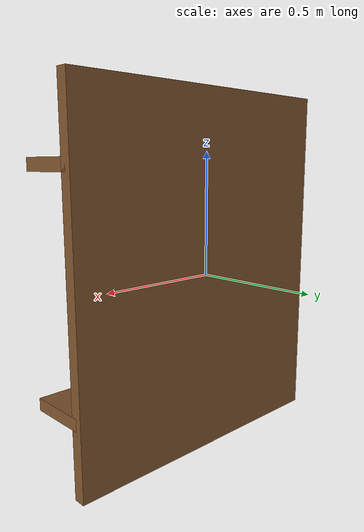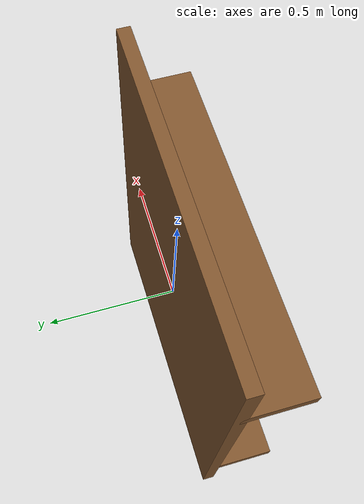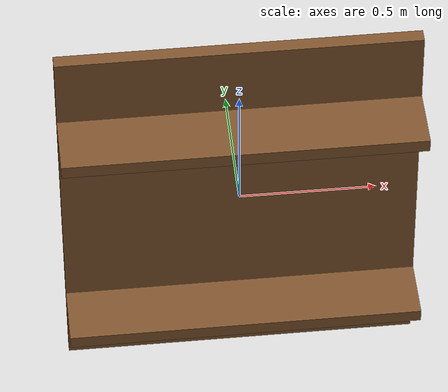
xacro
<?xml version="1.0" ?>
<robot name="shelf_1.3_0.3_0.25_1.2_0.25" xmlns:xacro="http://ros.org/wiki/xacro">

<!-- Property List -->
<xacro:property name="pi" value="3.1415926535897931" />
<xacro:property name="shelf_base_height" value="1.5" />
<xacro:property name="shelf_thickness" value="0.05" />
<xacro:property name="shelf_base_width" value="1.3" />

<xacro:property name="shelf1_height" value="0.3" />
<xacro:property name="shelf1_depth" value="0.25" />

<xacro:property name="shelf2_height" value="1.2" />
<xacro:property name="shelf2_depth" value="0.25" />

<!-- Color macros -->
<xacro:macro name="material_brown_transparent">
 	<material name="brown_transparent">
		<color rgba="${139/255} ${69/255} ${19/255} 0.4" />
	</material>
</xacro:macro>

<!-- Base Link -->
<link name = "shelf_base">
<inertial>
 <origin xyz = "0 0 0" />
 <mass value = "1.0" />
 <inertia ixx = "1.0" ixy="0.0"  ixz="0.0"  iyy="100.0"  iyz="0.0"  izz="1.0" />
 </inertial>
<visual>
  <geometry>
 	<box size="${shelf_base_width} ${shelf_thickness} ${shelf_base_height}"/>
  </geometry>
  <material name="brown_transparent"/>
</visual>
<collision>
  <geometry>
 	<box size="${shelf_base_width} ${shelf_thickness} ${shelf_base_height}"/>
  </geometry>
  <material name="brown_transparent"/>
</collision>
</link>

<!-- Base To First shelf link Joint-->
<joint name="base_to_shelf1" type="fixed">
  <parent link="shelf_base"/>
  <child link="shelf_1"/>
  <axis xyz="0 0 0"/>
  <origin rpy="0.0 0.0 0.0" xyz="0.0 ${-shelf1_depth/2} ${-shelf_base_height/2 + shelf1_height}"/>
</joint>

<!-- First shelf Link-->
<link name = "shelf_1">
<visual>
  <geometry>
 	<box size="${shelf_base_width} ${shelf1_depth} ${shelf_thickness}"/>
  </geometry>
  <material name="brown_transparent"/>
</visual>
<collision>
  <geometry>
 	<box size="${shelf_base_width} ${shelf1_depth} ${shelf_thickness}"/>
  </geometry>
  <material name="brown_transparent"/>
</collision>
</link>

<!-- Base To Second shelf link Joint-->
<joint name="base_to_shelf2" type="fixed">
  <parent link="shelf_base"/>
  <child link="shelf_2"/>
  <axis xyz="0 0 0"/>
  <origin rpy="0.0 0.0 0.0" xyz="0.0 ${-shelf2_depth/2} ${-shelf_base_height/2 + shelf2_height}"/>
</joint>

<!-- Second shelf Link-->
<link name = "shelf_2">
<visual>
  <geometry>
 	<box size="${shelf_base_width} ${shelf2_depth} ${shelf_thickness}"/>
  </geometry>
  <material name="brown_transparent"/>
</visual>
<collision>
  <geometry>
 	<box size="${shelf_base_width} ${shelf2_depth} ${shelf_thickness}"/>
  </geometry>
  <material name="brown_transparent"/>
</collision>
</link>

<gazebo reference="shelf_base">
   <material>Gazebo/Wood</material>
</gazebo>

<gazebo reference="shelf_1">
   <material>Gazebo/Wood</material>
</gazebo>

<gazebo reference="shelf_2">
   <material>Gazebo/Wood</material>
</gazebo>

</robot>
